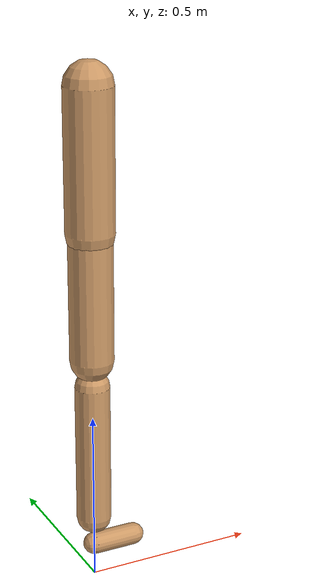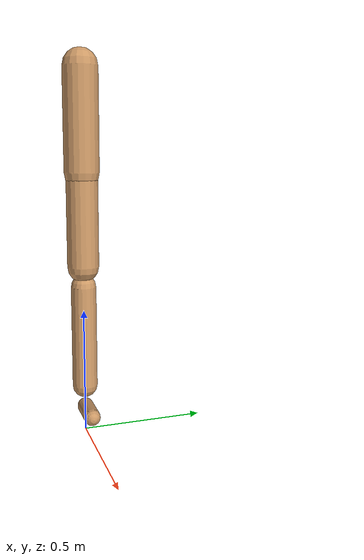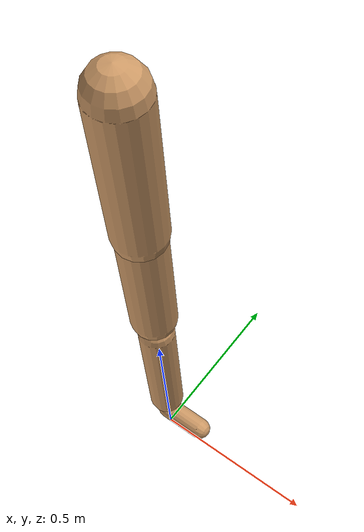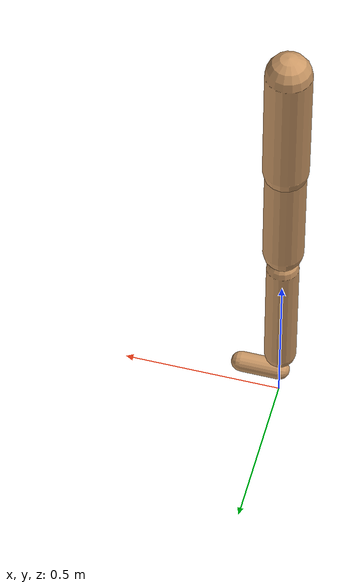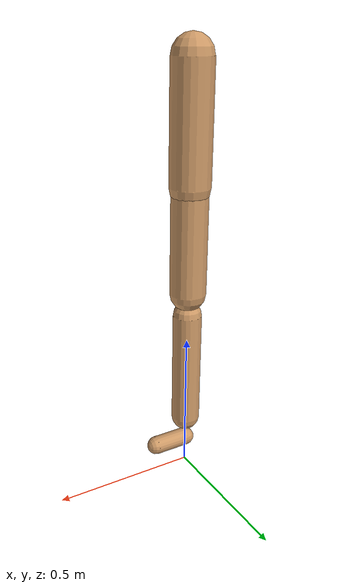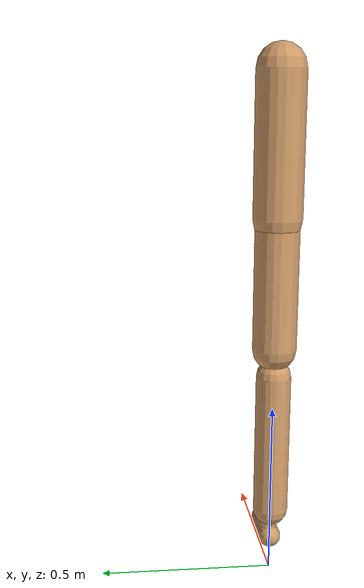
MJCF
<mujoco model="walker2d">
  <compiler angle="degree" coordinate="global" inertiafromgeom="true" />
  <default>
    <joint armature="0.01" damping=".1" limited="true" />
    <geom conaffinity="0" condim="3" contype="1" density="1000" friction="0.8 .1 .1" rgba="0.8 0.6 .4 1" />
  </default>
  <option integrator="RK4" timestep="0.002" />
  <worldbody>

    <body name="torso" pos="0 0 -0.17331455201027396">
      <joint armature="0" axis="1 0 0" damping="0" limited="false" name="ignorex" pos="0 0 0" stiffness="0" type="slide" />
      <joint armature="0" axis="0 0 1" damping="0" limited="false" name="ignorez" pos="0 0 0" ref="1.25" stiffness="0" type="slide" />
      <joint armature="0" axis="0 1 0" damping="0" limited="false" name="ignorey" pos="0 0 0" stiffness="0" type="hinge" />
      <geom fromto="0 0 1.45 0 0 1.05" name="torso_geom" size="0.06925529078324719" type="capsule" />
      <body name="thigh">
        <joint axis="0 -1 0" name="thigh_joint" pos="0 0 1.05" range="-150 0" type="hinge" />
        <geom fromto="0.0 0.0 1.05 0.0 0.0 0.6820963667417087" name="thigh_geom" size="0.0627606213312016" type="capsule" />
        <body name="leg" pos="0.0 0.0 0.08209636674170873">
          <joint axis="0 -1 0" name="leg_joint" pos="0 0 0.6" range="-150 0" type="hinge" />
          <geom fromto="0.0 0.0 0.6 0.0 0.0 0.19121818526856524" name="leg_geom" size="0.05020849706496128" type="capsule" />
          <body name="foot" pos="0.0 0.0 0.09121818526856523">
            <joint axis="0 -1 0" name="foot_joint" pos="0 0 0.1" range="-45 45" type="hinge" />
            <geom fromto="0.0 0.0 0.1 0.1236905460221247 0.0 0.1" name="foot_geom" size="0.0320904763608949" type="capsule" />
          </body>
        </body>
      </body>

      <body name="thigh_left">
        <joint axis="0 -1 0" name="thigh_left_joint" pos="0 0 1.05" range="-150 0" type="hinge" />
        <geom fromto="0.0 0.0 1.05 0.0 0.0 0.6820963667417087" name="thigh_left_geom" rgba=".7 .3 .6 1" size="0.0627606213312016" type="capsule" />
        <body name="leg_left" pos="0.0 0.0 0.08209636674170873">
          <joint axis="0 -1 0" name="leg_left_joint" pos="0 0 0.6" range="-150 0" type="hinge" />
          <geom fromto="0.0 0.0 0.6 0.0 0.0 0.19121818526856524" name="leg_left_geom" rgba=".7 .3 .6 1" size="0.05020849706496128" type="capsule" />
          <body name="foot_left" pos="0.0 0.0 0.09121818526856523">
            <joint axis="0 -1 0" name="foot_left_joint" pos="0 0 0.1" range="-45 45" type="hinge" />
            <geom fromto="0.0 0.0 0.1 0.1236905460221247 0.0 0.1" name="foot_left_geom" rgba=".7 .3 .6 1" size="0.0320904763608949" type="capsule" />
          </body>
        </body>
      </body>
    </body>
  </worldbody>
  <actuator>

    <motor ctrllimited="true" ctrlrange="-1.0 1.0" gear="100" joint="thigh_joint" />
    <motor ctrllimited="true" ctrlrange="-1.0 1.0" gear="100" joint="leg_joint" />
    <motor ctrllimited="true" ctrlrange="-1.0 1.0" gear="100" joint="foot_joint" />
    <motor ctrllimited="true" ctrlrange="-1.0 1.0" gear="100" joint="thigh_left_joint" />
    <motor ctrllimited="true" ctrlrange="-1.0 1.0" gear="100" joint="leg_left_joint" />
    <motor ctrllimited="true" ctrlrange="-1.0 1.0" gear="100" joint="foot_left_joint" />

  </actuator>
</mujoco>
